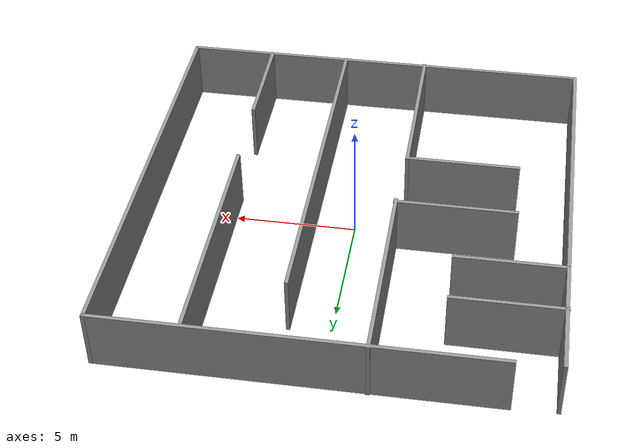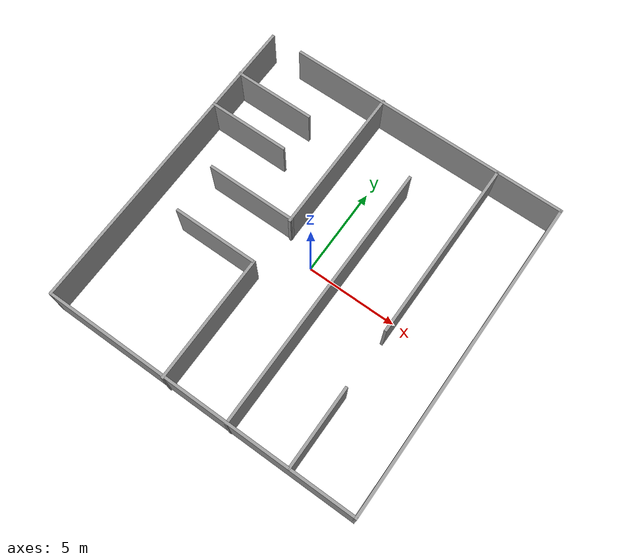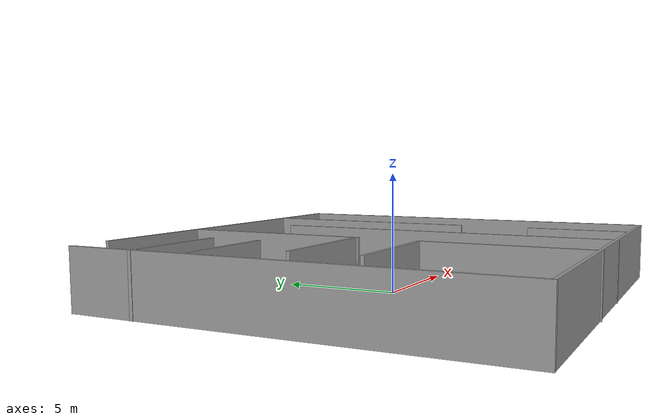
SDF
<?xml version='1.0'?>
<sdf version='1.4'>
  <model name='maze1'>
    <pose>-0.02997 0.006432 0 0 -0 0</pose>
    <link name='Wall_11'>
      <collision name='Wall_11_Collision'>
        <geometry>
          <box>
            <size>4.5 0.15 2.5</size>
          </box>
        </geometry>
        <pose>0 0 1.25 0 -0 0</pose>
      </collision>
      <visual name='Wall_11_Visual'>
        <pose>0 0 1.25 0 -0 0</pose>
        <geometry>
          <box>
            <size>4.5 0.15 2.5</size>
          </box>
        </geometry>
        <material>
          <script>
            <uri>file://media/materials/scripts/gazebo.material</uri>
            <name>Gazebo/Grey</name>
          </script>
          <ambient>1 1 1 1</ambient>
        </material>
      </visual>
      <pose>5.14424 -6.6059 0 0 -0 1.5708</pose>
    </link>
    <link name='Wall_13'>
      <collision name='Wall_13_Collision'>
        <geometry>
          <box>
            <size>15 0.15 2.5</size>
          </box>
        </geometry>
        <pose>0 0 1.25 0 -0 0</pose>
      </collision>
      <visual name='Wall_13_Visual'>
        <pose>0 0 1.25 0 -0 0</pose>
        <geometry>
          <box>
            <size>15 0.15 2.5</size>
          </box>
        </geometry>
        <material>
          <script>
            <uri>file://media/materials/scripts/gazebo.material</uri>
            <name>Gazebo/Grey</name>
          </script>
          <ambient>1 1 1 1</ambient>
        </material>
      </visual>
      <pose>1.72091 -1.40216 0 0 -0 1.5708</pose>
    </link>
    <link name='Wall_15'>
      <collision name='Wall_15_Collision'>
        <geometry>
          <box>
            <size>4.5 0.15 2.5</size>
          </box>
        </geometry>
        <pose>0 0 1.25 0 -0 0</pose>
      </collision>
      <visual name='Wall_15_Visual'>
        <pose>0 0 1.25 0 -0 0</pose>
        <geometry>
          <box>
            <size>4.5 0.15 2.5</size>
          </box>
        </geometry>
        <material>
          <script>
            <uri>file://media/materials/scripts/gazebo.material</uri>
            <name>Gazebo/Grey</name>
          </script>
          <ambient>1 1 1 1</ambient>
        </material>
      </visual>
      <pose>-6.533 5.93017 0 0 -0 3.14159</pose>
    </link>
    <link name='Wall_17'>
      <collision name='Wall_17_Collision'>
        <geometry>
          <box>
            <size>4.5 0.15 2.5</size>
          </box>
        </geometry>
        <pose>0 0 1.25 0 -0 0</pose>
      </collision>
      <visual name='Wall_17_Visual'>
        <pose>0 0 1.25 0 -0 0</pose>
        <geometry>
          <box>
            <size>4.5 0.15 2.5</size>
          </box>
        </geometry>
        <material>
          <script>
            <uri>file://media/materials/scripts/gazebo.material</uri>
            <name>Gazebo/Grey</name>
          </script>
          <ambient>1 1 1 1</ambient>
        </material>
      </visual>
      <pose>-6.51286 3.70963 0 0 -0 0</pose>
    </link>
    <link name='Wall_19'>
      <collision name='Wall_19_Collision'>
        <geometry>
          <box>
            <size>8.25 0.15 2.5</size>
          </box>
        </geometry>
        <pose>0 0 1.25 0 -0 0</pose>
      </collision>
      <visual name='Wall_19_Visual'>
        <pose>0 0 1.25 0 -0 0</pose>
        <geometry>
          <box>
            <size>8.25 0.15 2.5</size>
          </box>
        </geometry>
        <material>
          <script>
            <uri>file://media/materials/scripts/gazebo.material</uri>
            <name>Gazebo/Grey</name>
          </script>
          <ambient>1 1 1 1</ambient>
        </material>
      </visual>
      <pose>-1.74868 4.79891 0 0 -0 1.5708</pose>
    </link>
    <link name='Wall_21'>
      <collision name='Wall_21_Collision'>
        <geometry>
          <box>
            <size>5 0.15 2.5</size>
          </box>
        </geometry>
        <pose>0 0 1.25 0 -0 0</pose>
      </collision>
      <visual name='Wall_21_Visual'>
        <pose>0 0 1.25 0 -0 0</pose>
        <geometry>
          <box>
            <size>5 0.15 2.5</size>
          </box>
        </geometry>
        <material>
          <script>
            <uri>file://media/materials/scripts/gazebo.material</uri>
            <name>Gazebo/Grey</name>
          </script>
          <ambient>1 1 1 1</ambient>
        </material>
      </visual>
      <pose>-4.15544 0.823025 0 0 -0 0</pose>
    </link>
    <link name='Wall_23'>
      <collision name='Wall_23_Collision'>
        <geometry>
          <box>
            <size>4.75 0.15 2.5</size>
          </box>
        </geometry>
        <pose>0 0 1.25 0 -0 0</pose>
      </collision>
      <visual name='Wall_23_Visual'>
        <pose>0 0 1.25 0 -0 0</pose>
        <geometry>
          <box>
            <size>4.75 0.15 2.5</size>
          </box>
        </geometry>
        <material>
          <script>
            <uri>file://media/materials/scripts/gazebo.material</uri>
            <name>Gazebo/Grey</name>
          </script>
          <ambient>1 1 1 1</ambient>
        </material>
      </visual>
      <pose>-4.18792 -1.99891 0 0 -0 0</pose>
    </link>
    <link name='Wall_25'>
      <collision name='Wall_25_Collision'>
        <geometry>
          <box>
            <size>7 0.15 2.5</size>
          </box>
        </geometry>
        <pose>0 0 1.25 0 -0 0</pose>
      </collision>
      <visual name='Wall_25_Visual'>
        <pose>0 0 1.25 0 -0 0</pose>
        <geometry>
          <box>
            <size>7 0.15 2.5</size>
          </box>
        </geometry>
        <material>
          <script>
            <uri>file://media/materials/scripts/gazebo.material</uri>
            <name>Gazebo/Grey</name>
          </script>
          <ambient>1 1 1 1</ambient>
        </material>
      </visual>
      <pose>-1.88792 -5.42391 0 0 0 -1.5708</pose>
    </link>
    <link name='Wall_3'>
      <collision name='Wall_3_Collision'>
        <geometry>
          <box>
            <size>17.686 0.15 2.5</size>
          </box>
        </geometry>
        <pose>0 0 1.25 0 -0 0</pose>
      </collision>
      <visual name='Wall_3_Visual'>
        <pose>0 0 1.25 0 -0 0</pose>
        <geometry>
          <box>
            <size>17.686 0.15 2.5</size>
          </box>
        </geometry>
        <material>
          <script>
            <uri>file://media/materials/scripts/gazebo.material</uri>
            <name>Gazebo/Grey</name>
          </script>
          <ambient>1 1 1 1</ambient>
        </material>
      </visual>
      <pose>-8.68826 -0.027946 0 0 0 -1.5708</pose>
    </link>
    <link name='Wall_4'>
      <collision name='Wall_4_Collision'>
        <geometry>
          <box>
            <size>17.5 0.15 2.5</size>
          </box>
        </geometry>
        <pose>0 0 1.25 0 -0 0</pose>
      </collision>
      <visual name='Wall_4_Visual'>
        <pose>0 0 1.25 0 -0 0</pose>
        <geometry>
          <box>
            <size>17.5 0.15 2.5</size>
          </box>
        </geometry>
        <material>
          <script>
            <uri>file://media/materials/scripts/gazebo.material</uri>
            <name>Gazebo/Grey</name>
          </script>
          <ambient>1 1 1 1</ambient>
        </material>
      </visual>
      <pose>0.032996 -8.79547 0 0 -0 0</pose>
    </link>
    <link name='Wall_6'>
      <collision name='Wall_6_Collision'>
        <geometry>
          <box>
            <size>17.75 0.15 2.5</size>
          </box>
        </geometry>
        <pose>0 0 1.25 0 -0 0</pose>
      </collision>
      <visual name='Wall_6_Visual'>
        <pose>0 0 1.25 0 -0 0</pose>
        <geometry>
          <box>
            <size>17.75 0.15 2.5</size>
          </box>
        </geometry>
        <material>
          <script>
            <uri>file://media/materials/scripts/gazebo.material</uri>
            <name>Gazebo/Grey</name>
          </script>
          <ambient>1 1 1 1</ambient>
        </material>
      </visual>
      <pose>8.708 0.004531 0 0 -0 1.5708</pose>
    </link>
    <link name='Wall_7'>
      <collision name='Wall_7_Collision'>
        <geometry>
          <box>
            <size>15.75 0.15 2.5</size>
          </box>
        </geometry>
        <pose>0 0 1.25 0 -0 0</pose>
      </collision>
      <visual name='Wall_7_Visual'>
        <pose>0 0 1.25 0 -0 0</pose>
        <geometry>
          <box>
            <size>15.75 0.15 2.5</size>
          </box>
        </geometry>
        <material>
          <script>
            <uri>file://media/materials/scripts/gazebo.material</uri>
            <name>Gazebo/Grey</name>
          </script>
          <ambient>1 1 1 1</ambient>
        </material>
      </visual>
      <pose>0.907996 8.80453 0 0 -0 3.14159</pose>
    </link>
    <link name='Wall_9'>
      <collision name='Wall_9_Collision'>
        <geometry>
          <box>
            <size>10 0.15 2.5</size>
          </box>
        </geometry>
        <pose>0 0 1.25 0 -0 0</pose>
      </collision>
      <visual name='Wall_9_Visual'>
        <pose>0 0 1.25 0 -0 0</pose>
        <geometry>
          <box>
            <size>10 0.15 2.5</size>
          </box>
        </geometry>
        <material>
          <script>
            <uri>file://media/materials/scripts/gazebo.material</uri>
            <name>Gazebo/Grey</name>
          </script>
          <ambient>1 1 1 1</ambient>
        </material>
      </visual>
      <pose>5.10845 3.80389 0 0 -0 1.5708</pose>
    </link>
    <static>1</static>
  </model>
</sdf>
